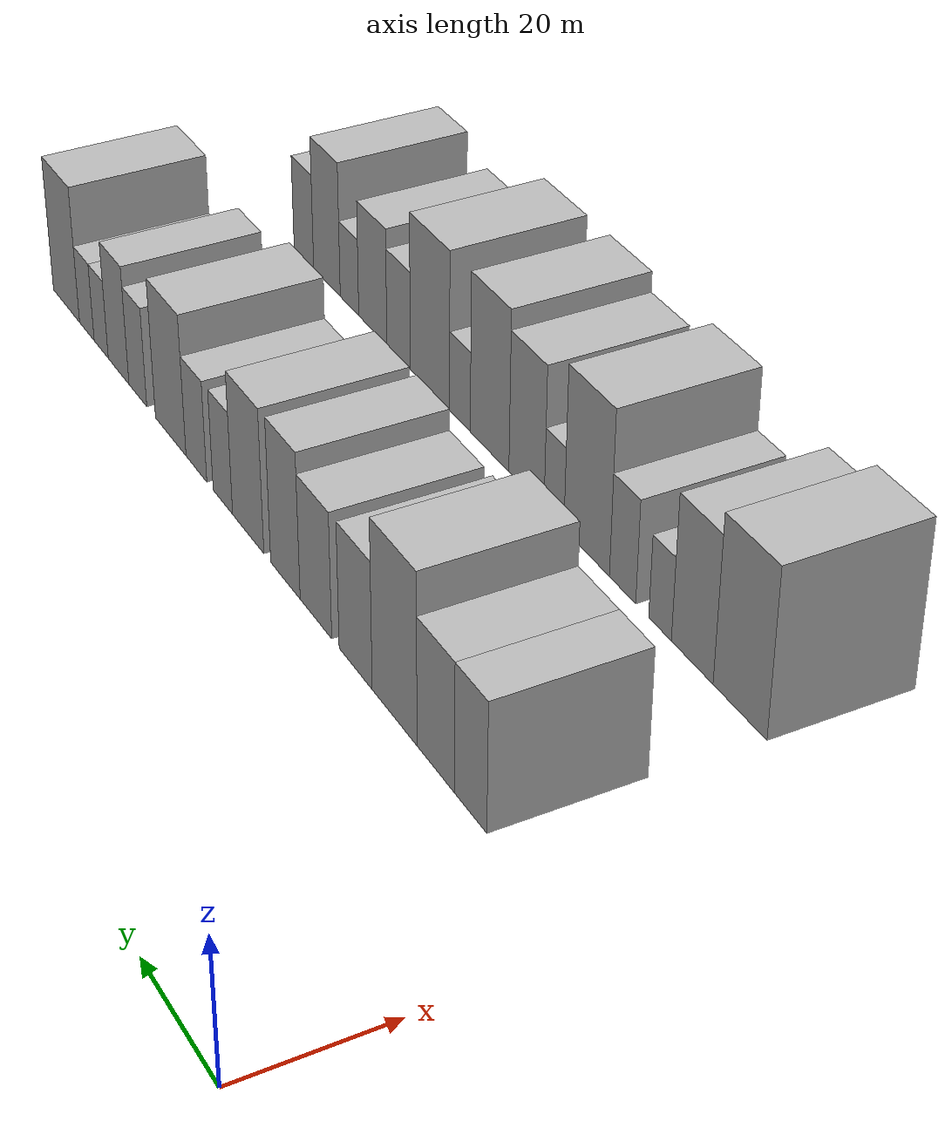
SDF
<sdf version="1.6">
 <world name="default">
  <model name="building_33">
   <static>1</static>
   <pose>50.0000 24.1216 0 0.000000 0.000000 0.000000</pose>
   <link name="link">
    <pose>0 0 9.00 0 0 0</pose>
    <collision name="collision"><geometry><box><size>20.0000 7.4279 18.0000</size></box></geometry></collision>
    <visual name="visual">
     <cast_shadows>0</cast_shadows>
     <geometry><box><size>20.0000 7.4279 18.0000</size></box></geometry>
     <material>
      <script>
       <uri>model://HANNAS_wall/materials/scripts</uri>
       <uri>model://HANNAS_wall/materials/textures</uri>
       <name>vrc/HANNAS_wall</name>
      </script>
     </material>
    </visual>
   </link>
  </model>
  <model name="building_34">
   <static>1</static>
   <pose>50.0000 32.3131 0 0.000000 0.000000 0.000000</pose>
   <link name="link">
    <pose>0 0 9.00 0 0 0</pose>
    <collision name="collision"><geometry><box><size>20.0000 8.9552 18.0000</size></box></geometry></collision>
    <visual name="visual">
     <cast_shadows>0</cast_shadows>
     <geometry><box><size>20.0000 8.9552 18.0000</size></box></geometry>
     <material>
      <script>
       <uri>model://HANNAS_wall/materials/scripts</uri>
       <uri>model://HANNAS_wall/materials/textures</uri>
       <name>vrc/HANNAS_wall</name>
      </script>
     </material>
    </visual>
   </link>
  </model>
  <model name="building_35">
   <static>1</static>
   <pose>50.0000 42.4267 0 0.000000 0.000000 0.000000</pose>
   <link name="link">
    <pose>0 0 12.00 0 0 0</pose>
    <collision name="collision"><geometry><box><size>20.0000 11.2719 24.0000</size></box></geometry></collision>
    <visual name="visual">
     <cast_shadows>0</cast_shadows>
     <geometry><box><size>20.0000 11.2719 24.0000</size></box></geometry>
     <material>
      <script>
       <uri>model://HANNAS_wall/materials/scripts</uri>
       <uri>model://HANNAS_wall/materials/textures</uri>
       <name>vrc/HANNAS_wall</name>
      </script>
     </material>
    </visual>
   </link>
  </model>
  <model name="building_36">
   <static>1</static>
   <pose>50.0000 52.4069 0 0.000000 0.000000 0.000000</pose>
   <link name="link">
    <pose>0 0 9.00 0 0 0</pose>
    <collision name="collision"><geometry><box><size>20.0000 8.6884 18.0000</size></box></geometry></collision>
    <visual name="visual">
     <cast_shadows>0</cast_shadows>
     <geometry><box><size>20.0000 8.6884 18.0000</size></box></geometry>
     <material>
      <script>
       <uri>model://HANNAS_wall/materials/scripts</uri>
       <uri>model://HANNAS_wall/materials/textures</uri>
       <name>vrc/HANNAS_wall</name>
      </script>
     </material>
    </visual>
   </link>
  </model>
  <model name="building_37">
   <static>1</static>
   <pose>50.0000 63.1032 0 0.000000 0.000000 0.000000</pose>
   <link name="link">
    <pose>0 0 9.00 0 0 0</pose>
    <collision name="collision"><geometry><box><size>20.0000 8.7043 18.0000</size></box></geometry></collision>
    <visual name="visual">
     <cast_shadows>0</cast_shadows>
     <geometry><box><size>20.0000 8.7043 18.0000</size></box></geometry>
     <material>
      <script>
       <uri>model://HANNAS_wall/materials/scripts</uri>
       <uri>model://HANNAS_wall/materials/textures</uri>
       <name>vrc/HANNAS_wall</name>
      </script>
     </material>
    </visual>
   </link>
  </model>
  <model name="building_38">
   <static>1</static>
   <pose>50.0000 71.6830 0 0.000000 0.000000 0.000000</pose>
   <link name="link">
    <pose>0 0 10.50 0 0 0</pose>
    <collision name="collision"><geometry><box><size>20.0000 8.4552 21.0000</size></box></geometry></collision>
    <visual name="visual">
     <cast_shadows>0</cast_shadows>
     <geometry><box><size>20.0000 8.4552 21.0000</size></box></geometry>
     <material>
      <script>
       <uri>model://HANNAS_wall/materials/scripts</uri>
       <uri>model://HANNAS_wall/materials/textures</uri>
       <name>vrc/HANNAS_wall</name>
      </script>
     </material>
    </visual>
   </link>
  </model>
  <model name="building_39">
   <static>1</static>
   <pose>50.0000 82.6132 0 0.000000 0.000000 0.000000</pose>
   <link name="link">
    <pose>0 0 10.50 0 0 0</pose>
    <collision name="collision"><geometry><box><size>20.0000 9.4053 21.0000</size></box></geometry></collision>
    <visual name="visual">
     <cast_shadows>0</cast_shadows>
     <geometry><box><size>20.0000 9.4053 21.0000</size></box></geometry>
     <material>
      <script>
       <uri>model://HANNAS_wall/materials/scripts</uri>
       <uri>model://HANNAS_wall/materials/textures</uri>
       <name>vrc/HANNAS_wall</name>
      </script>
     </material>
    </visual>
   </link>
  </model>
  <model name="building_40">
   <static>1</static>
   <pose>50.0000 90.3303 0 0.000000 0.000000 0.000000</pose>
   <link name="link">
    <pose>0 0 7.50 0 0 0</pose>
    <collision name="collision"><geometry><box><size>20.0000 6.0289 15.0000</size></box></geometry></collision>
    <visual name="visual">
     <cast_shadows>0</cast_shadows>
     <geometry><box><size>20.0000 6.0289 15.0000</size></box></geometry>
     <material>
      <script>
       <uri>model://HANNAS_wall/materials/scripts</uri>
       <uri>model://HANNAS_wall/materials/textures</uri>
       <name>vrc/HANNAS_wall</name>
      </script>
     </material>
    </visual>
   </link>
  </model>
  <model name="building_41">
   <static>1</static>
   <pose>50.0000 98.6847 0 0.000000 0.000000 0.000000</pose>
   <link name="link">
    <pose>0 0 7.50 0 0 0</pose>
    <collision name="collision"><geometry><box><size>20.0000 6.6799 15.0000</size></box></geometry></collision>
    <visual name="visual">
     <cast_shadows>0</cast_shadows>
     <geometry><box><size>20.0000 6.6799 15.0000</size></box></geometry>
     <material>
      <script>
       <uri>model://HANNAS_wall/materials/scripts</uri>
       <uri>model://HANNAS_wall/materials/textures</uri>
       <name>vrc/HANNAS_wall</name>
      </script>
     </material>
    </visual>
   </link>
  </model>
  <model name="building_42">
   <static>1</static>
   <pose>50.0000 107.1087 0 0.000000 0.000000 0.000000</pose>
   <link name="link">
    <pose>0 0 10.50 0 0 0</pose>
    <collision name="collision"><geometry><box><size>20.0000 10.1681 21.0000</size></box></geometry></collision>
    <visual name="visual">
     <cast_shadows>0</cast_shadows>
     <geometry><box><size>20.0000 10.1681 21.0000</size></box></geometry>
     <material>
      <script>
       <uri>model://HANNAS_wall/materials/scripts</uri>
       <uri>model://HANNAS_wall/materials/textures</uri>
       <name>vrc/HANNAS_wall</name>
      </script>
     </material>
    </visual>
   </link>
  </model>
  <model name="building_43">
   <static>1</static>
   <pose>50.0000 118.2897 0 0.000000 0.000000 0.000000</pose>
   <link name="link">
    <pose>0 0 7.50 0 0 0</pose>
    <collision name="collision"><geometry><box><size>20.0000 6.1939 15.0000</size></box></geometry></collision>
    <visual name="visual">
     <cast_shadows>0</cast_shadows>
     <geometry><box><size>20.0000 6.1939 15.0000</size></box></geometry>
     <material>
      <script>
       <uri>model://HANNAS_wall/materials/scripts</uri>
       <uri>model://HANNAS_wall/materials/textures</uri>
       <name>vrc/HANNAS_wall</name>
      </script>
     </material>
    </visual>
   </link>
  </model>
  <model name="building_44">
   <static>1</static>
   <pose>50.0000 125.0838 0 0.000000 0.000000 0.000000</pose>
   <link name="link">
    <pose>0 0 9.00 0 0 0</pose>
    <collision name="collision"><geometry><box><size>20.0000 7.3944 18.0000</size></box></geometry></collision>
    <visual name="visual">
     <cast_shadows>0</cast_shadows>
     <geometry><box><size>20.0000 7.3944 18.0000</size></box></geometry>
     <material>
      <script>
       <uri>model://HANNAS_wall/materials/scripts</uri>
       <uri>model://HANNAS_wall/materials/textures</uri>
       <name>vrc/HANNAS_wall</name>
      </script>
     </material>
    </visual>
   </link>
  </model>
  <model name="building_45">
   <static>1</static>
   <pose>50.0000 131.3723 0 0.000000 0.000000 0.000000</pose>
   <link name="link">
    <pose>0 0 6.00 0 0 0</pose>
    <collision name="collision"><geometry><box><size>20.0000 5.1827 12.0000</size></box></geometry></collision>
    <visual name="visual">
     <cast_shadows>0</cast_shadows>
     <geometry><box><size>20.0000 5.1827 12.0000</size></box></geometry>
     <material>
      <script>
       <uri>model://HANNAS_wall/materials/scripts</uri>
       <uri>model://HANNAS_wall/materials/textures</uri>
       <name>vrc/HANNAS_wall</name>
      </script>
     </material>
    </visual>
   </link>
  </model>
  <model name="building_46">
   <static>1</static>
   <pose>50.0000 136.6902 0 0.000000 0.000000 0.000000</pose>
   <link name="link">
    <pose>0 0 6.00 0 0 0</pose>
    <collision name="collision"><geometry><box><size>20.0000 5.4529 12.0000</size></box></geometry></collision>
    <visual name="visual">
     <cast_shadows>0</cast_shadows>
     <geometry><box><size>20.0000 5.4529 12.0000</size></box></geometry>
     <material>
      <script>
       <uri>model://HANNAS_wall/materials/scripts</uri>
       <uri>model://HANNAS_wall/materials/textures</uri>
       <name>vrc/HANNAS_wall</name>
      </script>
     </material>
    </visual>
   </link>
  </model>
  <model name="building_47">
   <static>1</static>
   <pose>50.0000 144.4189 0 0.000000 0.000000 0.000000</pose>
   <link name="link">
    <pose>0 0 10.50 0 0 0</pose>
    <collision name="collision"><geometry><box><size>20.0000 10.0046 21.0000</size></box></geometry></collision>
    <visual name="visual">
     <cast_shadows>0</cast_shadows>
     <geometry><box><size>20.0000 10.0046 21.0000</size></box></geometry>
     <material>
      <script>
       <uri>model://HANNAS_wall/materials/scripts</uri>
       <uri>model://HANNAS_wall/materials/textures</uri>
       <name>vrc/HANNAS_wall</name>
      </script>
     </material>
    </visual>
   </link>
  </model>
  <model name="building_91">
   <static>1</static>
   <pose>85.0000 25.3851 0 0.000000 0.000000 0.000000</pose>
   <link name="link">
    <pose>0 0 12.00 0 0 0</pose>
    <collision name="collision"><geometry><box><size>20.0000 11.2838 24.0000</size></box></geometry></collision>
    <visual name="visual">
     <cast_shadows>0</cast_shadows>
     <geometry><box><size>20.0000 11.2838 24.0000</size></box></geometry>
     <material>
      <script>
       <uri>model://HANNAS_wall/materials/scripts</uri>
       <uri>model://HANNAS_wall/materials/textures</uri>
       <name>vrc/HANNAS_wall</name>
      </script>
     </material>
    </visual>
   </link>
  </model>
  <model name="building_92">
   <static>1</static>
   <pose>85.0000 35.6036 0 0.000000 0.000000 0.000000</pose>
   <link name="link">
    <pose>0 0 10.50 0 0 0</pose>
    <collision name="collision"><geometry><box><size>20.0000 9.1533 21.0000</size></box></geometry></collision>
    <visual name="visual">
     <cast_shadows>0</cast_shadows>
     <geometry><box><size>20.0000 9.1533 21.0000</size></box></geometry>
     <material>
      <script>
       <uri>model://HANNAS_wall/materials/scripts</uri>
       <uri>model://HANNAS_wall/materials/textures</uri>
       <name>vrc/HANNAS_wall</name>
      </script>
     </material>
    </visual>
   </link>
  </model>
  <model name="building_93">
   <static>1</static>
   <pose>85.0000 42.7431 0 0.000000 0.000000 0.000000</pose>
   <link name="link">
    <pose>0 0 6.00 0 0 0</pose>
    <collision name="collision"><geometry><box><size>20.0000 5.1258 12.0000</size></box></geometry></collision>
    <visual name="visual">
     <cast_shadows>0</cast_shadows>
     <geometry><box><size>20.0000 5.1258 12.0000</size></box></geometry>
     <material>
      <script>
       <uri>model://HANNAS_wall/materials/scripts</uri>
       <uri>model://HANNAS_wall/materials/textures</uri>
       <name>vrc/HANNAS_wall</name>
      </script>
     </material>
    </visual>
   </link>
  </model>
  <model name="building_94">
   <static>1</static>
   <pose>85.0000 51.4089 0 0.000000 0.000000 0.000000</pose>
   <link name="link">
    <pose>0 0 7.50 0 0 0</pose>
    <collision name="collision"><geometry><box><size>20.0000 6.2059 15.0000</size></box></geometry></collision>
    <visual name="visual">
     <cast_shadows>0</cast_shadows>
     <geometry><box><size>20.0000 6.2059 15.0000</size></box></geometry>
     <material>
      <script>
       <uri>model://HANNAS_wall/materials/scripts</uri>
       <uri>model://HANNAS_wall/materials/textures</uri>
       <name>vrc/HANNAS_wall</name>
      </script>
     </material>
    </visual>
   </link>
  </model>
  <model name="building_95">
   <static>1</static>
   <pose>85.0000 60.0695 0 0.000000 0.000000 0.000000</pose>
   <link name="link">
    <pose>0 0 12.00 0 0 0</pose>
    <collision name="collision"><geometry><box><size>20.0000 11.1152 24.0000</size></box></geometry></collision>
    <visual name="visual">
     <cast_shadows>0</cast_shadows>
     <geometry><box><size>20.0000 11.1152 24.0000</size></box></geometry>
     <material>
      <script>
       <uri>model://HANNAS_wall/materials/scripts</uri>
       <uri>model://HANNAS_wall/materials/textures</uri>
       <name>vrc/HANNAS_wall</name>
      </script>
     </material>
    </visual>
   </link>
  </model>
  <model name="building_96">
   <static>1</static>
   <pose>85.0000 68.1395 0 0.000000 0.000000 0.000000</pose>
   <link name="link">
    <pose>0 0 6.00 0 0 0</pose>
    <collision name="collision"><geometry><box><size>20.0000 5.0247 12.0000</size></box></geometry></collision>
    <visual name="visual">
     <cast_shadows>0</cast_shadows>
     <geometry><box><size>20.0000 5.0247 12.0000</size></box></geometry>
     <material>
      <script>
       <uri>model://HANNAS_wall/materials/scripts</uri>
       <uri>model://HANNAS_wall/materials/textures</uri>
       <name>vrc/HANNAS_wall</name>
      </script>
     </material>
    </visual>
   </link>
  </model>
  <model name="building_97">
   <static>1</static>
   <pose>85.0000 75.2413 0 0.000000 0.000000 0.000000</pose>
   <link name="link">
    <pose>0 0 10.50 0 0 0</pose>
    <collision name="collision"><geometry><box><size>20.0000 9.1790 21.0000</size></box></geometry></collision>
    <visual name="visual">
     <cast_shadows>0</cast_shadows>
     <geometry><box><size>20.0000 9.1790 21.0000</size></box></geometry>
     <material>
      <script>
       <uri>model://HANNAS_wall/materials/scripts</uri>
       <uri>model://HANNAS_wall/materials/textures</uri>
       <name>vrc/HANNAS_wall</name>
      </script>
     </material>
    </visual>
   </link>
  </model>
  <model name="building_98">
   <static>1</static>
   <pose>85.0000 85.0718 0 0.000000 0.000000 0.000000</pose>
   <link name="link">
    <pose>0 0 12.00 0 0 0</pose>
    <collision name="collision"><geometry><box><size>20.0000 10.4819 24.0000</size></box></geometry></collision>
    <visual name="visual">
     <cast_shadows>0</cast_shadows>
     <geometry><box><size>20.0000 10.4819 24.0000</size></box></geometry>
     <material>
      <script>
       <uri>model://HANNAS_wall/materials/scripts</uri>
       <uri>model://HANNAS_wall/materials/textures</uri>
       <name>vrc/HANNAS_wall</name>
      </script>
     </material>
    </visual>
   </link>
  </model>
  <model name="building_99">
   <static>1</static>
   <pose>85.0000 93.2211 0 0.000000 0.000000 0.000000</pose>
   <link name="link">
    <pose>0 0 6.00 0 0 0</pose>
    <collision name="collision"><geometry><box><size>20.0000 5.8166 12.0000</size></box></geometry></collision>
    <visual name="visual">
     <cast_shadows>0</cast_shadows>
     <geometry><box><size>20.0000 5.8166 12.0000</size></box></geometry>
     <material>
      <script>
       <uri>model://HANNAS_wall/materials/scripts</uri>
       <uri>model://HANNAS_wall/materials/textures</uri>
       <name>vrc/HANNAS_wall</name>
      </script>
     </material>
    </visual>
   </link>
  </model>
  <model name="building_100">
   <static>1</static>
   <pose>85.0000 101.8083 0 0.000000 0.000000 0.000000</pose>
   <link name="link">
    <pose>0 0 12.00 0 0 0</pose>
    <collision name="collision"><geometry><box><size>20.0000 11.3578 24.0000</size></box></geometry></collision>
    <visual name="visual">
     <cast_shadows>0</cast_shadows>
     <geometry><box><size>20.0000 11.3578 24.0000</size></box></geometry>
     <material>
      <script>
       <uri>model://HANNAS_wall/materials/scripts</uri>
       <uri>model://HANNAS_wall/materials/textures</uri>
       <name>vrc/HANNAS_wall</name>
      </script>
     </material>
    </visual>
   </link>
  </model>
  <model name="building_101">
   <static>1</static>
   <pose>85.0000 111.0314 0 0.000000 0.000000 0.000000</pose>
   <link name="link">
    <pose>0 0 7.50 0 0 0</pose>
    <collision name="collision"><geometry><box><size>20.0000 7.0884 15.0000</size></box></geometry></collision>
    <visual name="visual">
     <cast_shadows>0</cast_shadows>
     <geometry><box><size>20.0000 7.0884 15.0000</size></box></geometry>
     <material>
      <script>
       <uri>model://HANNAS_wall/materials/scripts</uri>
       <uri>model://HANNAS_wall/materials/textures</uri>
       <name>vrc/HANNAS_wall</name>
      </script>
     </material>
    </visual>
   </link>
  </model>
  <model name="building_102">
   <static>1</static>
   <pose>85.0000 118.9539 0 0.000000 0.000000 0.000000</pose>
   <link name="link">
    <pose>0 0 9.00 0 0 0</pose>
    <collision name="collision"><geometry><box><size>20.0000 8.7566 18.0000</size></box></geometry></collision>
    <visual name="visual">
     <cast_shadows>0</cast_shadows>
     <geometry><box><size>20.0000 8.7566 18.0000</size></box></geometry>
     <material>
      <script>
       <uri>model://HANNAS_wall/materials/scripts</uri>
       <uri>model://HANNAS_wall/materials/textures</uri>
       <name>vrc/HANNAS_wall</name>
      </script>
     </material>
    </visual>
   </link>
  </model>
  <model name="building_103">
   <static>1</static>
   <pose>85.0000 126.2785 0 0.000000 0.000000 0.000000</pose>
   <link name="link">
    <pose>0 0 6.00 0 0 0</pose>
    <collision name="collision"><geometry><box><size>20.0000 5.8927 12.0000</size></box></geometry></collision>
    <visual name="visual">
     <cast_shadows>0</cast_shadows>
     <geometry><box><size>20.0000 5.8927 12.0000</size></box></geometry>
     <material>
      <script>
       <uri>model://HANNAS_wall/materials/scripts</uri>
       <uri>model://HANNAS_wall/materials/textures</uri>
       <name>vrc/HANNAS_wall</name>
      </script>
     </material>
    </visual>
   </link>
  </model>
  <model name="building_104">
   <static>1</static>
   <pose>85.0000 133.5880 0 0.000000 0.000000 0.000000</pose>
   <link name="link">
    <pose>0 0 10.50 0 0 0</pose>
    <collision name="collision"><geometry><box><size>20.0000 8.7262 21.0000</size></box></geometry></collision>
    <visual name="visual">
     <cast_shadows>0</cast_shadows>
     <geometry><box><size>20.0000 8.7262 21.0000</size></box></geometry>
     <material>
      <script>
       <uri>model://HANNAS_wall/materials/scripts</uri>
       <uri>model://HANNAS_wall/materials/textures</uri>
       <name>vrc/HANNAS_wall</name>
      </script>
     </material>
    </visual>
   </link>
  </model>
  <model name="building_105">
   <static>1</static>
   <pose>85.0000 141.2365 0 0.000000 0.000000 0.000000</pose>
   <link name="link">
    <pose>0 0 7.50 0 0 0</pose>
    <collision name="collision"><geometry><box><size>20.0000 6.5708 15.0000</size></box></geometry></collision>
    <visual name="visual">
     <cast_shadows>0</cast_shadows>
     <geometry><box><size>20.0000 6.5708 15.0000</size></box></geometry>
     <material>
      <script>
       <uri>model://HANNAS_wall/materials/scripts</uri>
       <uri>model://HANNAS_wall/materials/textures</uri>
       <name>vrc/HANNAS_wall</name>
      </script>
     </material>
    </visual>
   </link>
  </model>
 </world>
</sdf>
